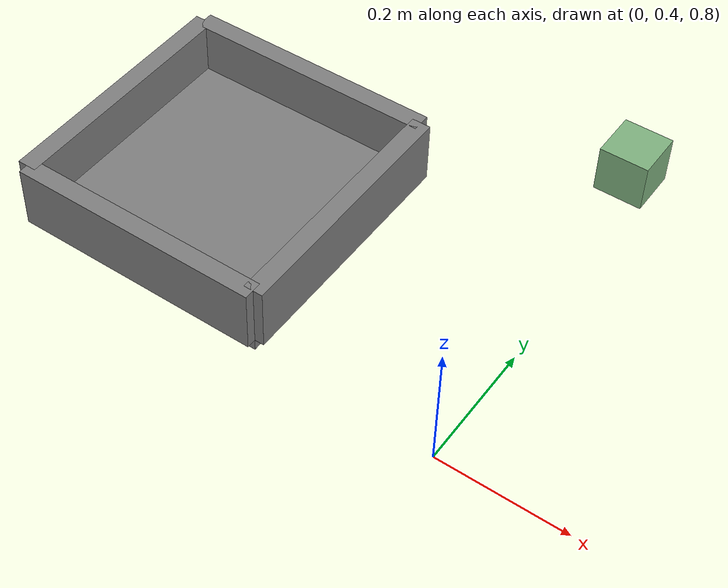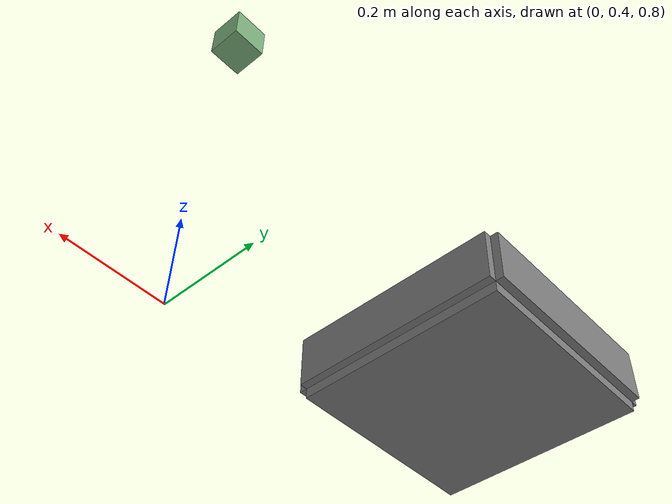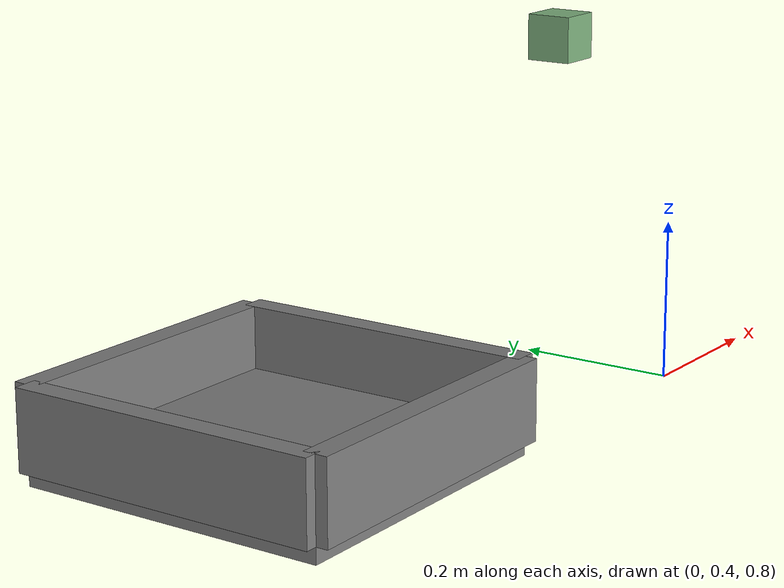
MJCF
<mujoco model="Objs">
  <asset>
    <mesh name="006_mustard_bottle" file="../assets/meshes/006_mustard_bottle.msh" scale="1 1 1"/>
    <texture name="006_mustard_bottle" type="2d" file="assets/textures/006_mustard_bottle.png"/>
    <material name="006_mustard_bottle" texture="006_mustard_bottle"/>

  </asset>

  <default>
    <default class="ycb_col">
	<geom contype="1" conaffinity="1" group="3" rgba=".4 .5 .6 1"/>
    </default>
    <default class="ycb_viz">
	<geom contype="0" conaffinity="0" type="mesh" mass="0"/>
    </default>
  </default>

  <worldbody>
  <!--Grasped Object-->
      <body mocap='true' name="pourcube" pos="0.1 0.62 1.2">
          <body name="rigid_cube">
              <joint armature="0" axis="1 0 0" damping="0" limited="true" name="box_1_x" pos="0 0 0" range="-5. 5." stiffness="0" type="slide"/>
              <joint armature="0" axis="0 1 0" damping="0" limited="true" name="box_1_y" pos="0 0 0" range="-5. 5." stiffness="0" type="slide"/>
              <joint armature="0" axis="0 0 1" damping="0" limited="true" name="box_1_z" pos="0 0 0" range="-2. 2." stiffness="0" type="slide"/>
              <joint armature="0" damping="0" name="box_1_rot" pos="0 0 0" stiffness="0" type="ball"/>
              <geom type="box" size="0.03 0.03 0.03" rgba=".5 .7 .5 1" friction="1 1 1"/>
          </body>
      </body>
       <!--fix area-->
      <body mocap='true' name="grab_obj" pos="-0.5 0.62 0.8">
          <geom type="box" size="0.2 0.2 0.02" friction="1 1 1"/>
          <geom type="box" size="0.015 0.2 0.05" pos="0.2 0 0.05" friction="1 1 1"/>
          <geom type="box" size="0.015 0.2 0.05" pos="-0.2 0 0.05" friction="1 1 1"/>
          <geom type="box" size="0.2 0.015 0.05" pos="0 -0.2 0.05" friction="1 1 1"/>
          <geom type="box" size="0.2 0.015 0.05" pos="0 0.2 0.05" friction="1 1 1"/>
      </body>
  </worldbody>

</mujoco>
